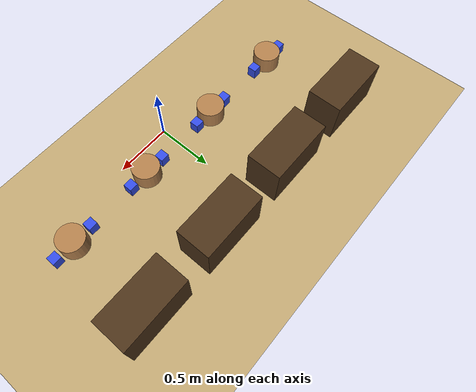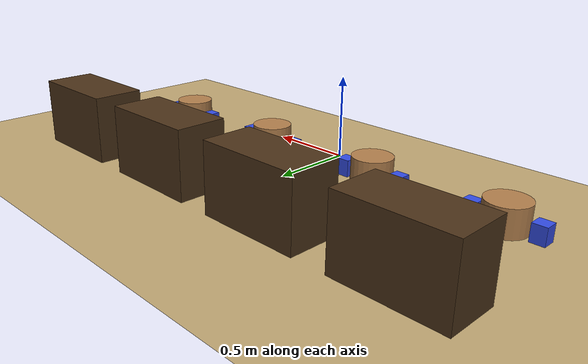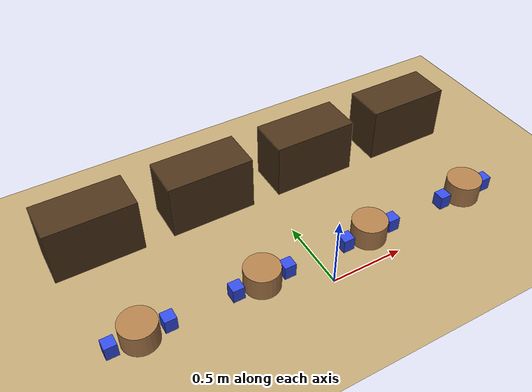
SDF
<sdf version="1.7">
 <world name="foodcourt">
  <plugin filename="gz-sim-physics-system" name="gz::sim::systems::Physics"/>
  <plugin filename="gz-sim-user-commands-system" name="gz::sim::systems::UserCommands"/>
  <plugin filename="gz-sim-scene-broadcaster-system" name="gz::sim::systems::SceneBroadcaster"/>
  <plugin filename="gz-sim-sensors-system" name="gz::sim::systems::Sensors">
   <render_engine>ogre2</render_engine>
  </plugin>
  <plugin filename="gz-sim-imu-system" name="gz::sim::systems::Imu"/>
  <physics type="ode">
   <real_time_update_rate>1000.0</real_time_update_rate>
   <max_step_size>0.001</max_step_size>
   <real_time_factor>1</real_time_factor>
   <ode>
    <solver>
     <type>quick</type>
     <iters>150</iters>
     <precon_iters>0</precon_iters>
     <sor>1.400000</sor>
     <use_dynamic_moi_rescaling>1</use_dynamic_moi_rescaling>
    </solver>
    <constraints>
     <cfm>0.00001</cfm>
     <erp>0.2</erp>
     <contact_max_correcting_vel>2000.000000</contact_max_correcting_vel>
     <contact_surface_layer>0.01000</contact_surface_layer>
    </constraints>
   </ode>
  </physics>
  <scene><ambient>1.0 1.0 1.0 1</ambient><background>1.0 1.0 1.0 1</background><shadows>false</shadows></scene>
  <light type="directional" name="sun">
   <cast_shadows>false</cast_shadows>
   <pose>0 0 10 0 0 0</pose>
   <diffuse>0.8 0.8 0.8 1</diffuse>
   <specular>0.2 0.2 0.2 1</specular>
   <attenuation>
    <range>1000</range>
    <constant>0.9</constant>
    <linear>0.01</linear>
    <quadratic>0.001</quadratic>
   </attenuation>
   <direction>-0.5 0.1 -0.9</direction>
  </light>
  <model name="ground_plane">
   <static>true</static>
   <link name="link">
    <collision name="ground_collision">
     <geometry><plane><normal>0 0 1</normal><size>10 10</size></plane></geometry>
    </collision>
    <visual name="ground_visual">
     <geometry><plane><normal>0 0 1</normal><size>10 10</size></plane></geometry>
     <material>
      <ambient>0.75 0.65 0.45 1</ambient>
      <diffuse>0.75 0.65 0.45 1</diffuse>
      <specular>0.0 0.0 0.0 1</specular>
     </material>
    </visual>
   </link>
  </model>
  <model name="stall_1">
   <static>true</static>
   <pose>-1.2 1.0 0.2 0 0 0</pose>
   <link name="link">
    <collision name="col"><geometry><box><size>0.6 0.3 0.4</size></box></geometry></collision>
    <visual name="vis">
     <geometry><box><size>0.6 0.3 0.4</size></box></geometry>
     <material>
      <ambient>0.30 0.20 0.10 1</ambient>
      <diffuse>0.30 0.20 0.10 1</diffuse>
      <specular>0 0 0 1</specular>
     </material>
    </visual>
   </link>
  </model>
  <model name="stall_2">
   <static>true</static>
   <pose>-0.4 1.0 0.2 0 0 0</pose>
   <link name="link">
    <collision name="col"><geometry><box><size>0.6 0.3 0.4</size></box></geometry></collision>
    <visual name="vis">
     <geometry><box><size>0.6 0.3 0.4</size></box></geometry>
     <material>
      <ambient>0.30 0.20 0.10 1</ambient>
      <diffuse>0.30 0.20 0.10 1</diffuse>
      <specular>0 0 0 1</specular>
     </material>
    </visual>
   </link>
  </model>
  <model name="stall_3">
   <static>true</static>
   <pose>0.4 1.0 0.2 0 0 0</pose>
   <link name="link">
    <collision name="col"><geometry><box><size>0.6 0.3 0.4</size></box></geometry></collision>
    <visual name="vis">
     <geometry><box><size>0.6 0.3 0.4</size></box></geometry>
     <material>
      <ambient>0.30 0.20 0.10 1</ambient>
      <diffuse>0.30 0.20 0.10 1</diffuse>
      <specular>0 0 0 1</specular>
     </material>
    </visual>
   </link>
  </model>
  <model name="stall_4">
   <static>true</static>
   <pose>1.2 1.0 0.2 0 0 0</pose>
   <link name="link">
    <collision name="col"><geometry><box><size>0.6 0.3 0.4</size></box></geometry></collision>
    <visual name="vis">
     <geometry><box><size>0.6 0.3 0.4</size></box></geometry>
     <material>
      <ambient>0.30 0.20 0.10 1</ambient>
      <diffuse>0.30 0.20 0.10 1</diffuse>
      <specular>0 0 0 1</specular>
     </material>
    </visual>
   </link>
  </model>
  <model name="table_1">
   <static>true</static>
   <pose>-1.2 0.2 0.08 0 0 0</pose>
   <link name="link">
    <collision name="col">
     <geometry><cylinder><radius>0.12</radius><length>0.16</length></cylinder></geometry>
    </collision>
    <visual name="vis">
     <geometry><cylinder><radius>0.12</radius><length>0.16</length></cylinder></geometry>
     <material>
      <ambient>0.70 0.50 0.30 1</ambient>
      <diffuse>0.70 0.50 0.30 1</diffuse>
      <specular>0 0 0 1</specular>
     </material>
    </visual>
   </link>
  </model>
  <model name="table_2">
   <static>true</static>
   <pose>-0.4 0.2 0.08 0 0 0</pose>
   <link name="link">
    <collision name="col">
     <geometry><cylinder><radius>0.12</radius><length>0.16</length></cylinder></geometry>
    </collision>
    <visual name="vis">
     <geometry><cylinder><radius>0.12</radius><length>0.16</length></cylinder></geometry>
     <material>
      <ambient>0.70 0.50 0.30 1</ambient>
      <diffuse>0.70 0.50 0.30 1</diffuse>
      <specular>0 0 0 1</specular>
     </material>
    </visual>
   </link>
  </model>
  <model name="table_3">
   <static>true</static>
   <pose>0.4 0.2 0.08 0 0 0</pose>
   <link name="link">
    <collision name="col">
     <geometry><cylinder><radius>0.12</radius><length>0.16</length></cylinder></geometry>
    </collision>
    <visual name="vis">
     <geometry><cylinder><radius>0.12</radius><length>0.16</length></cylinder></geometry>
     <material>
      <ambient>0.70 0.50 0.30 1</ambient>
      <diffuse>0.70 0.50 0.30 1</diffuse>
      <specular>0 0 0 1</specular>
     </material>
    </visual>
   </link>
  </model>
  <model name="table_4">
   <static>true</static>
   <pose>1.2 0.2 0.08 0 0 0</pose>
   <link name="link">
    <collision name="col">
     <geometry><cylinder><radius>0.12</radius><length>0.16</length></cylinder></geometry>
    </collision>
    <visual name="vis">
     <geometry><cylinder><radius>0.12</radius><length>0.16</length></cylinder></geometry>
     <material>
      <ambient>0.70 0.50 0.30 1</ambient>
      <diffuse>0.70 0.50 0.30 1</diffuse>
      <specular>0 0 0 1</specular>
     </material>
    </visual>
   </link>
  </model>
  <model name="chair_11">
   <static>true</static>
   <pose>-1.38 0.2 0.05 0 0 0</pose>
   <link name="link">
    <collision name="col"><geometry><box><size>0.08 0.08 0.10</size></box></geometry></collision>
    <visual name="vis">
     <geometry><box><size>0.08 0.08 0.10</size></box></geometry>
     <material>
      <ambient>0.2 0.3 0.9 1</ambient>
      <diffuse>0.2 0.3 0.9 1</diffuse>
      <specular>0 0 0 1</specular>
     </material>
    </visual>
   </link>
  </model>
  <model name="chair_12">
   <static>true</static>
   <pose>-1.02 0.2 0.05 0 0 3.14159</pose>
   <link name="link">
    <collision name="col"><geometry><box><size>0.08 0.08 0.10</size></box></geometry></collision>
    <visual name="vis">
     <geometry><box><size>0.08 0.08 0.10</size></box></geometry>
     <material>
      <ambient>0.2 0.3 0.9 1</ambient>
      <diffuse>0.2 0.3 0.9 1</diffuse>
      <specular>0 0 0 1</specular>
     </material>
    </visual>
   </link>
  </model>
  <model name="chair_21">
   <static>true</static>
   <pose>-0.58 0.2 0.05 0 0 0</pose>
   <link name="link">
    <collision name="col"><geometry><box><size>0.08 0.08 0.10</size></box></geometry></collision>
    <visual name="vis">
     <geometry><box><size>0.08 0.08 0.10</size></box></geometry>
     <material>
      <ambient>0.2 0.3 0.9 1</ambient>
      <diffuse>0.2 0.3 0.9 1</diffuse>
      <specular>0 0 0 1</specular>
     </material>
    </visual>
   </link>
  </model>
  <model name="chair_22">
   <static>true</static>
   <pose>-0.22 0.2 0.05 0 0 3.14159</pose>
   <link name="link">
    <collision name="col"><geometry><box><size>0.08 0.08 0.10</size></box></geometry></collision>
    <visual name="vis">
     <geometry><box><size>0.08 0.08 0.10</size></box></geometry>
     <material>
      <ambient>0.2 0.3 0.9 1</ambient>
      <diffuse>0.2 0.3 0.9 1</diffuse>
      <specular>0 0 0 1</specular>
     </material>
    </visual>
   </link>
  </model>
  <model name="chair_31">
   <static>true</static>
   <pose>0.22 0.2 0.05 0 0 0</pose>
   <link name="link">
    <collision name="col"><geometry><box><size>0.08 0.08 0.10</size></box></geometry></collision>
    <visual name="vis">
     <geometry><box><size>0.08 0.08 0.10</size></box></geometry>
     <material>
      <ambient>0.2 0.3 0.9 1</ambient>
      <diffuse>0.2 0.3 0.9 1</diffuse>
      <specular>0 0 0 1</specular>
     </material>
    </visual>
   </link>
  </model>
  <model name="chair_32">
   <static>true</static>
   <pose>0.58 0.2 0.05 0 0 3.14159</pose>
   <link name="link">
    <collision name="col"><geometry><box><size>0.08 0.08 0.10</size></box></geometry></collision>
    <visual name="vis">
     <geometry><box><size>0.08 0.08 0.10</size></box></geometry>
     <material>
      <ambient>0.2 0.3 0.9 1</ambient>
      <diffuse>0.2 0.3 0.9 1</diffuse>
      <specular>0 0 0 1</specular>
     </material>
    </visual>
   </link>
  </model>
  <model name="chair_41">
   <static>true</static>
   <pose>1.02 0.2 0.05 0 0 0</pose>
   <link name="link">
    <collision name="col"><geometry><box><size>0.08 0.08 0.10</size></box></geometry></collision>
    <visual name="vis">
     <geometry><box><size>0.08 0.08 0.10</size></box></geometry>
     <material>
      <ambient>0.2 0.3 0.9 1</ambient>
      <diffuse>0.2 0.3 0.9 1</diffuse>
      <specular>0 0 0 1</specular>
     </material>
    </visual>
   </link>
  </model>
  <model name="chair_42">
   <static>true</static>
   <pose>1.38 0.2 0.05 0 0 3.14159</pose>
   <link name="link">
    <collision name="col"><geometry><box><size>0.08 0.08 0.10</size></box></geometry></collision>
    <visual name="vis">
     <geometry><box><size>0.08 0.08 0.10</size></box></geometry>
     <material>
      <ambient>0.2 0.3 0.9 1</ambient>
      <diffuse>0.2 0.3 0.9 1</diffuse>
      <specular>0 0 0 1</specular>
     </material>
    </visual>
   </link>
  </model>
 </world>
</sdf>
